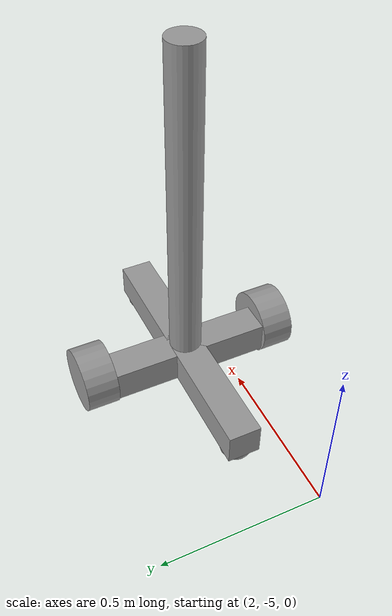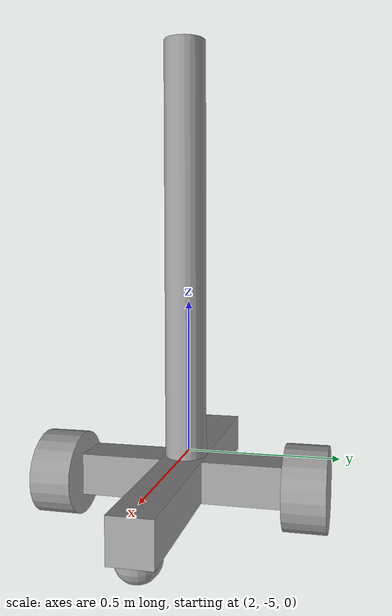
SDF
<?xml version='1.0'?>
<sdf version='1.6'>
  <model name='EimerRobot'>
    <link name='link_0_clone'>
      <pose frame=''>2.5834 -4.84657 0.119047 0 -0 0</pose>
      <inertial>
        <mass>1</mass>
        <inertia>
          <ixx>0.166667</ixx>
          <ixy>0</ixy>
          <ixz>0</ixz>
          <iyy>0.166667</iyy>
          <iyz>0</iyz>
          <izz>0.166667</izz>
        </inertia>
        <pose frame=''>0 0 0 0 -0 0</pose>
      </inertial>
      <self_collide>0</self_collide>
      <kinematic>0</kinematic>
      <gravity>1</gravity>
      <visual name='visual'>
        <pose frame=''>0 0 0 0 -0 0</pose>
        <geometry>
          <box>
            <size>0.1 0.5 0.1</size>
          </box>
        </geometry>
        <material>
          <lighting>1</lighting>
          <script>
            <uri>file://media/materials/scripts/gazebo.material</uri>
            <name>Gazebo/Grey</name>
          </script>
          <shader type='pixel'>
            <normal_map>__default__</normal_map>
          </shader>
          <ambient>0.3 0.3 0.3 1</ambient>
          <diffuse>0.7 0.7 0.7 1</diffuse>
          <specular>0.01 0.01 0.01 1</specular>
          <emissive>0 0 0 1</emissive>
        </material>
        <transparency>0</transparency>
        <cast_shadows>1</cast_shadows>
      </visual>
      <collision name='collision'>
        <laser_retro>0</laser_retro>
        <max_contacts>10</max_contacts>
        <pose frame=''>0 0 0 0 -0 0</pose>
        <geometry>
          <box>
            <size>0.1 0.5 0.1</size>
          </box>
        </geometry>
        <surface>
          <friction>
            <ode>
              <mu>1</mu>
              <mu2>1</mu2>
              <fdir1>0 0 0</fdir1>
              <slip1>0</slip1>
              <slip2>0</slip2>
            </ode>
            <torsional>
              <coefficient>1</coefficient>
              <patch_radius>0</patch_radius>
              <surface_radius>0</surface_radius>
              <use_patch_radius>1</use_patch_radius>
              <ode>
                <slip>0</slip>
              </ode>
            </torsional>
          </friction>
          <bounce>
            <restitution_coefficient>0</restitution_coefficient>
            <threshold>1e+06</threshold>
          </bounce>
          <contact>
            <collide_without_contact>0</collide_without_contact>
            <collide_without_contact_bitmask>1</collide_without_contact_bitmask>
            <collide_bitmask>1</collide_bitmask>
            <ode>
              <soft_cfm>0</soft_cfm>
              <soft_erp>0.2</soft_erp>
              <kp>1e+13</kp>
              <kd>1</kd>
              <max_vel>0.01</max_vel>
              <min_depth>0</min_depth>
            </ode>
            <bullet>
              <split_impulse>1</split_impulse>
              <split_impulse_penetration_threshold>-0.01</split_impulse_penetration_threshold>
              <soft_cfm>0</soft_cfm>
              <soft_erp>0.2</soft_erp>
              <kp>1e+13</kp>
              <kd>1</kd>
            </bullet>
          </contact>
        </surface>
      </collision>
    </link>
    <link name='link_0_clone_clone'>
      <pose frame=''>2.58152 -4.846 0.119047 0 -0 1.5707</pose>
      <inertial>
        <mass>1</mass>
        <inertia>
          <ixx>0.166667</ixx>
          <ixy>0</ixy>
          <ixz>0</ixz>
          <iyy>0.166667</iyy>
          <iyz>0</iyz>
          <izz>0.166667</izz>
        </inertia>
        <pose frame=''>0 0 0 0 -0 0</pose>
      </inertial>
      <self_collide>0</self_collide>
      <kinematic>0</kinematic>
      <visual name='visual'>
        <pose frame=''>0 0 0 0 -0 0</pose>
        <geometry>
          <box>
            <size>0.1 0.8 0.1</size>
          </box>
        </geometry>
        <material>
          <lighting>1</lighting>
          <script>
            <uri>file://media/materials/scripts/gazebo.material</uri>
            <name>Gazebo/Grey</name>
          </script>
          <shader type='pixel'>
            <normal_map>__default__</normal_map>
          </shader>
          <ambient>0.3 0.3 0.3 1</ambient>
          <diffuse>0.7 0.7 0.7 1</diffuse>
          <specular>0.01 0.01 0.01 1</specular>
          <emissive>0 0 0 1</emissive>
        </material>
        <transparency>0</transparency>
        <cast_shadows>1</cast_shadows>
      </visual>
      <collision name='collision'>
        <laser_retro>0</laser_retro>
        <max_contacts>10</max_contacts>
        <pose frame=''>0 0 0 0 -0 0</pose>
        <geometry>
          <box>
            <size>0.1 0.8 0.1</size>
          </box>
        </geometry>
        <surface>
          <friction>
            <ode>
              <mu>1</mu>
              <mu2>1</mu2>
              <fdir1>0 0 0</fdir1>
              <slip1>0</slip1>
              <slip2>0</slip2>
            </ode>
            <torsional>
              <coefficient>1</coefficient>
              <patch_radius>0</patch_radius>
              <surface_radius>0</surface_radius>
              <use_patch_radius>1</use_patch_radius>
              <ode>
                <slip>0</slip>
              </ode>
            </torsional>
          </friction>
          <bounce>
            <restitution_coefficient>0</restitution_coefficient>
            <threshold>1e+06</threshold>
          </bounce>
          <contact>
            <collide_without_contact>0</collide_without_contact>
            <collide_without_contact_bitmask>1</collide_without_contact_bitmask>
            <collide_bitmask>1</collide_bitmask>
            <ode>
              <soft_cfm>0</soft_cfm>
              <soft_erp>0.2</soft_erp>
              <kp>1e+13</kp>
              <kd>1</kd>
              <max_vel>0.01</max_vel>
              <min_depth>0</min_depth>
            </ode>
            <bullet>
              <split_impulse>1</split_impulse>
              <split_impulse_penetration_threshold>-0.01</split_impulse_penetration_threshold>
              <soft_cfm>0</soft_cfm>
              <soft_erp>0.2</soft_erp>
              <kp>1e+13</kp>
              <kd>1</kd>
            </bullet>
          </contact>
        </surface>
      </collision>
    </link>
    <link name='link_1_clone'>
      <pose frame=''>2.61519 -4.54652 0.119046 1.5707 -0 0</pose>
      <inertial>
        <mass>1</mass>
        <inertia>
          <ixx>0.145833</ixx>
          <ixy>0</ixy>
          <ixz>0</ixz>
          <iyy>0.145833</iyy>
          <iyz>0</iyz>
          <izz>0.125</izz>
        </inertia>
        <pose frame=''>0 0 0 0 -0 0</pose>
      </inertial>
      <self_collide>0</self_collide>
      <kinematic>0</kinematic>
      <visual name='visual'>
        <pose frame=''>0 0 0 0 -0 0</pose>
        <geometry>
          <cylinder>
            <radius>0.1</radius>
            <length>0.1</length>
          </cylinder>
        </geometry>
        <material>
          <lighting>1</lighting>
          <script>
            <uri>file://media/materials/scripts/gazebo.material</uri>
            <name>Gazebo/Grey</name>
          </script>
          <shader type='pixel'>
            <normal_map>__default__</normal_map>
          </shader>
          <ambient>0.3 0.3 0.3 1</ambient>
          <diffuse>0.7 0.7 0.7 1</diffuse>
          <specular>0.01 0.01 0.01 1</specular>
          <emissive>0 0 0 1</emissive>
        </material>
        <transparency>0</transparency>
        <cast_shadows>1</cast_shadows>
      </visual>
      <collision name='collision'>
        <laser_retro>0</laser_retro>
        <max_contacts>10</max_contacts>
        <pose frame=''>0 0 0 0 -0 0</pose>
        <geometry>
          <cylinder>
            <radius>0.1</radius>
            <length>0.1</length>
          </cylinder>
        </geometry>
        <surface>
          <friction>
            <ode>
              <mu>1</mu>
              <mu2>1</mu2>
              <fdir1>0 0 0</fdir1>
              <slip1>0</slip1>
              <slip2>0</slip2>
            </ode>
            <torsional>
              <coefficient>1</coefficient>
              <patch_radius>0</patch_radius>
              <surface_radius>0</surface_radius>
              <use_patch_radius>1</use_patch_radius>
              <ode>
                <slip>0</slip>
              </ode>
            </torsional>
          </friction>
          <bounce>
            <restitution_coefficient>0</restitution_coefficient>
            <threshold>1e+06</threshold>
          </bounce>
          <contact>
            <collide_without_contact>0</collide_without_contact>
            <collide_without_contact_bitmask>1</collide_without_contact_bitmask>
            <collide_bitmask>1</collide_bitmask>
            <ode>
              <soft_cfm>0</soft_cfm>
              <soft_erp>0.2</soft_erp>
              <kp>1e+13</kp>
              <kd>1</kd>
              <max_vel>0.01</max_vel>
              <min_depth>0</min_depth>
            </ode>
            <bullet>
              <split_impulse>1</split_impulse>
              <split_impulse_penetration_threshold>-0.01</split_impulse_penetration_threshold>
              <soft_cfm>0</soft_cfm>
              <soft_erp>0.2</soft_erp>
              <kp>1e+13</kp>
              <kd>1</kd>
            </bullet>
          </contact>
        </surface>
      </collision>
    </link>
    <link name='link_1_clone_clone'>
      <pose frame=''>2.61534 -5.14663 0.119047 1.5707 -0 0</pose>
      <inertial>
        <mass>1</mass>
        <inertia>
          <ixx>0.145833</ixx>
          <ixy>0</ixy>
          <ixz>0</ixz>
          <iyy>0.145833</iyy>
          <iyz>0</iyz>
          <izz>0.125</izz>
        </inertia>
        <pose frame=''>0 0 0 0 -0 0</pose>
      </inertial>
      <self_collide>0</self_collide>
      <kinematic>0</kinematic>
      <visual name='visual'>
        <pose frame=''>0 0 0 0 -0 0</pose>
        <geometry>
          <cylinder>
            <radius>0.1</radius>
            <length>0.1</length>
          </cylinder>
        </geometry>
        <material>
          <lighting>1</lighting>
          <script>
            <uri>file://media/materials/scripts/gazebo.material</uri>
            <name>Gazebo/Grey</name>
          </script>
          <shader type='pixel'>
            <normal_map>__default__</normal_map>
          </shader>
          <ambient>0.3 0.3 0.3 1</ambient>
          <diffuse>0.7 0.7 0.7 1</diffuse>
          <specular>0.01 0.01 0.01 1</specular>
          <emissive>0 0 0 1</emissive>
        </material>
        <transparency>0</transparency>
        <cast_shadows>1</cast_shadows>
      </visual>
      <collision name='collision'>
        <laser_retro>0</laser_retro>
        <max_contacts>10</max_contacts>
        <pose frame=''>0 0 0 0 -0 0</pose>
        <geometry>
          <cylinder>
            <radius>0.1</radius>
            <length>0.1</length>
          </cylinder>
        </geometry>
        <surface>
          <friction>
            <ode>
              <mu>1</mu>
              <mu2>1</mu2>
              <fdir1>0 0 0</fdir1>
              <slip1>0</slip1>
              <slip2>0</slip2>
            </ode>
            <torsional>
              <coefficient>1</coefficient>
              <patch_radius>0</patch_radius>
              <surface_radius>0</surface_radius>
              <use_patch_radius>1</use_patch_radius>
              <ode>
                <slip>0</slip>
              </ode>
            </torsional>
          </friction>
          <bounce>
            <restitution_coefficient>0</restitution_coefficient>
            <threshold>1e+06</threshold>
          </bounce>
          <contact>
            <collide_without_contact>0</collide_without_contact>
            <collide_without_contact_bitmask>1</collide_without_contact_bitmask>
            <collide_bitmask>1</collide_bitmask>
            <ode>
              <soft_cfm>0</soft_cfm>
              <soft_erp>0.2</soft_erp>
              <kp>1e+13</kp>
              <kd>1</kd>
              <max_vel>0.01</max_vel>
              <min_depth>0</min_depth>
            </ode>
            <bullet>
              <split_impulse>1</split_impulse>
              <split_impulse_penetration_threshold>-0.01</split_impulse_penetration_threshold>
              <soft_cfm>0</soft_cfm>
              <soft_erp>0.2</soft_erp>
              <kp>1e+13</kp>
              <kd>1</kd>
            </bullet>
          </contact>
        </surface>
      </collision>
    </link>
    <link name='link_3_clone'>
      <pose frame=''>2.93153 -4.846 0.069047 0 -0 0</pose>
      <inertial>
        <mass>1</mass>
        <inertia>
          <ixx>0.1</ixx>
          <ixy>0</ixy>
          <ixz>0</ixz>
          <iyy>0.1</iyy>
          <iyz>0</iyz>
          <izz>0.1</izz>
        </inertia>
        <pose frame=''>0 0 0 0 -0 0</pose>
      </inertial>
      <self_collide>0</self_collide>
      <kinematic>0</kinematic>
      <visual name='visual'>
        <pose frame=''>0 0 0 0 -0 0</pose>
        <geometry>
          <sphere>
            <radius>0.05</radius>
          </sphere>
        </geometry>
        <material>
          <lighting>1</lighting>
          <script>
            <uri>file://media/materials/scripts/gazebo.material</uri>
            <name>Gazebo/Grey</name>
          </script>
          <shader type='pixel'>
            <normal_map>__default__</normal_map>
          </shader>
          <ambient>0.3 0.3 0.3 1</ambient>
          <diffuse>0.7 0.7 0.7 1</diffuse>
          <specular>0.01 0.01 0.01 1</specular>
          <emissive>0 0 0 1</emissive>
        </material>
        <transparency>0</transparency>
        <cast_shadows>1</cast_shadows>
      </visual>
      <collision name='collision'>
        <laser_retro>0</laser_retro>
        <max_contacts>10</max_contacts>
        <pose frame=''>0 0 0 0 -0 0</pose>
        <geometry>
          <sphere>
            <radius>0.05</radius>
          </sphere>
        </geometry>
        <surface>
          <friction>
            <ode>
              <mu>1</mu>
              <mu2>1</mu2>
              <fdir1>0 0 0</fdir1>
              <slip1>0</slip1>
              <slip2>0</slip2>
            </ode>
            <torsional>
              <coefficient>1</coefficient>
              <patch_radius>0</patch_radius>
              <surface_radius>0</surface_radius>
              <use_patch_radius>1</use_patch_radius>
              <ode>
                <slip>0</slip>
              </ode>
            </torsional>
          </friction>
          <bounce>
            <restitution_coefficient>0</restitution_coefficient>
            <threshold>1e+06</threshold>
          </bounce>
          <contact>
            <collide_without_contact>0</collide_without_contact>
            <collide_without_contact_bitmask>1</collide_without_contact_bitmask>
            <collide_bitmask>1</collide_bitmask>
            <ode>
              <soft_cfm>0</soft_cfm>
              <soft_erp>0.2</soft_erp>
              <kp>1e+13</kp>
              <kd>1</kd>
              <max_vel>0.01</max_vel>
              <min_depth>0</min_depth>
            </ode>
            <bullet>
              <split_impulse>1</split_impulse>
              <split_impulse_penetration_threshold>-0.01</split_impulse_penetration_threshold>
              <soft_cfm>0</soft_cfm>
              <soft_erp>0.2</soft_erp>
              <kp>1e+13</kp>
              <kd>1</kd>
            </bullet>
          </contact>
        </surface>
      </collision>
    </link>
    <link name='link_3_clone_clone'>
      <pose frame=''>2.23152 -4.846 0.069047 0 -0 0</pose>
      <inertial>
        <mass>1</mass>
        <inertia>
          <ixx>0.1</ixx>
          <ixy>0</ixy>
          <ixz>0</ixz>
          <iyy>0.1</iyy>
          <iyz>0</iyz>
          <izz>0.1</izz>
        </inertia>
        <pose frame=''>0 0 0 0 -0 0</pose>
      </inertial>
      <self_collide>0</self_collide>
      <kinematic>0</kinematic>
      <visual name='visual'>
        <pose frame=''>0 0 0 0 -0 0</pose>
        <geometry>
          <sphere>
            <radius>0.05</radius>
          </sphere>
        </geometry>
        <material>
          <lighting>1</lighting>
          <script>
            <uri>file://media/materials/scripts/gazebo.material</uri>
            <name>Gazebo/Grey</name>
          </script>
          <shader type='pixel'>
            <normal_map>__default__</normal_map>
          </shader>
          <ambient>0.3 0.3 0.3 1</ambient>
          <diffuse>0.7 0.7 0.7 1</diffuse>
          <specular>0.01 0.01 0.01 1</specular>
          <emissive>0 0 0 1</emissive>
        </material>
        <transparency>0</transparency>
        <cast_shadows>1</cast_shadows>
      </visual>
      <collision name='collision'>
        <laser_retro>0</laser_retro>
        <max_contacts>10</max_contacts>
        <pose frame=''>0 0 0 0 -0 0</pose>
        <geometry>
          <sphere>
            <radius>0.05</radius>
          </sphere>
        </geometry>
        <surface>
          <friction>
            <ode>
              <mu>1</mu>
              <mu2>1</mu2>
              <fdir1>0 0 0</fdir1>
              <slip1>0</slip1>
              <slip2>0</slip2>
            </ode>
            <torsional>
              <coefficient>1</coefficient>
              <patch_radius>0</patch_radius>
              <surface_radius>0</surface_radius>
              <use_patch_radius>1</use_patch_radius>
              <ode>
                <slip>0</slip>
              </ode>
            </torsional>
          </friction>
          <bounce>
            <restitution_coefficient>0</restitution_coefficient>
            <threshold>1e+06</threshold>
          </bounce>
          <contact>
            <collide_without_contact>0</collide_without_contact>
            <collide_without_contact_bitmask>1</collide_without_contact_bitmask>
            <collide_bitmask>1</collide_bitmask>
            <ode>
              <soft_cfm>0</soft_cfm>
              <soft_erp>0.2</soft_erp>
              <kp>1e+13</kp>
              <kd>1</kd>
              <max_vel>0.01</max_vel>
              <min_depth>0</min_depth>
            </ode>
            <bullet>
              <split_impulse>1</split_impulse>
              <split_impulse_penetration_threshold>-0.01</split_impulse_penetration_threshold>
              <soft_cfm>0</soft_cfm>
              <soft_erp>0.2</soft_erp>
              <kp>1e+13</kp>
              <kd>1</kd>
            </bullet>
          </contact>
        </surface>
      </collision>
    </link>
    <link name='link_4'>
      <pose frame=''>2.5834 -4.84657 0.669047 0 -0 0</pose>
      <inertial>
        <mass>1</mass>
        <inertia>
          <ixx>0.145833</ixx>
          <ixy>0</ixy>
          <ixz>0</ixz>
          <iyy>0.145833</iyy>
          <iyz>0</iyz>
          <izz>0.125</izz>
        </inertia>
        <pose frame=''>0 0 0 0 -0 0</pose>
      </inertial>
      <self_collide>0</self_collide>
      <kinematic>0</kinematic>
      <visual name='visual'>
        <pose frame=''>0 0 0 0 -0 0</pose>
        <geometry>
          <cylinder>
            <radius>0.05</radius>
            <length>1</length>
          </cylinder>
        </geometry>
        <material>
          <lighting>1</lighting>
          <script>
            <uri>file://media/materials/scripts/gazebo.material</uri>
            <name>Gazebo/Grey</name>
          </script>
          <shader type='pixel'>
            <normal_map>__default__</normal_map>
          </shader>
          <ambient>0.3 0.3 0.3 1</ambient>
          <diffuse>0.7 0.7 0.7 1</diffuse>
          <specular>0.01 0.01 0.01 1</specular>
          <emissive>0 0 0 1</emissive>
        </material>
        <transparency>0</transparency>
        <cast_shadows>1</cast_shadows>
      </visual>
      <collision name='collision'>
        <laser_retro>0</laser_retro>
        <max_contacts>10</max_contacts>
        <pose frame=''>0 0 0 0 -0 0</pose>
        <geometry>
          <cylinder>
            <radius>0.05</radius>
            <length>1</length>
          </cylinder>
        </geometry>
        <surface>
          <friction>
            <ode>
              <mu>1</mu>
              <mu2>1</mu2>
              <fdir1>0 0 0</fdir1>
              <slip1>0</slip1>
              <slip2>0</slip2>
            </ode>
            <torsional>
              <coefficient>1</coefficient>
              <patch_radius>0</patch_radius>
              <surface_radius>0</surface_radius>
              <use_patch_radius>1</use_patch_radius>
              <ode>
                <slip>0</slip>
              </ode>
            </torsional>
          </friction>
          <bounce>
            <restitution_coefficient>0</restitution_coefficient>
            <threshold>1e+06</threshold>
          </bounce>
          <contact>
            <collide_without_contact>0</collide_without_contact>
            <collide_without_contact_bitmask>1</collide_without_contact_bitmask>
            <collide_bitmask>1</collide_bitmask>
            <ode>
              <soft_cfm>0</soft_cfm>
              <soft_erp>0.2</soft_erp>
              <kp>1e+13</kp>
              <kd>1</kd>
              <max_vel>0.01</max_vel>
              <min_depth>0</min_depth>
            </ode>
            <bullet>
              <split_impulse>1</split_impulse>
              <split_impulse_penetration_threshold>-0.01</split_impulse_penetration_threshold>
              <soft_cfm>0</soft_cfm>
              <soft_erp>0.2</soft_erp>
              <kp>1e+13</kp>
              <kd>1</kd>
            </bullet>
          </contact>
        </surface>
      </collision>
    </link>
    <joint name='link_0_clone_JOINT_0' type='fixed'>
      <parent>link_0_clone</parent>
      <child>link_0_clone_clone</child>
      <pose frame=''>0 0 0 0 -0 0</pose>
      <physics>
        <ode>
          <limit>
            <cfm>0</cfm>
            <erp>0.2</erp>
          </limit>
          <suspension>
            <cfm>0</cfm>
            <erp>0.2</erp>
          </suspension>
        </ode>
      </physics>
    </joint>
    <joint name='link_0_clone_JOINT_1' type='revolute'>
      <parent>link_0_clone</parent>
      <child>link_1_clone</child>
      <pose frame=''>0 0 0 0 -0 0</pose>
      <axis>
        <xyz>0 0 1</xyz>
        <use_parent_model_frame>0</use_parent_model_frame>
        <limit>
          <lower>-1.79769e+308</lower>
          <upper>1.79769e+308</upper>
          <effort>-1</effort>
          <velocity>-1</velocity>
        </limit>
        <dynamics>
          <spring_reference>0</spring_reference>
          <spring_stiffness>0</spring_stiffness>
          <damping>0</damping>
        </dynamics>
      </axis>
      <physics>
        <ode>
          <limit>
            <cfm>0</cfm>
            <erp>0.2</erp>
          </limit>
          <suspension>
            <cfm>0</cfm>
            <erp>0.2</erp>
          </suspension>
        </ode>
      </physics>
    </joint>
    <joint name='link_0_clone_JOINT_2' type='revolute'>
      <parent>link_0_clone</parent>
      <child>link_1_clone_clone</child>
      <pose frame=''>0 0 0 0 -0 0</pose>
      <axis>
        <xyz>0 0 1</xyz>
        <use_parent_model_frame>0</use_parent_model_frame>
        <limit>
          <lower>-1.79769e+308</lower>
          <upper>1.79769e+308</upper>
          <effort>-1</effort>
          <velocity>-1</velocity>
        </limit>
        <dynamics>
          <spring_reference>0</spring_reference>
          <spring_stiffness>0</spring_stiffness>
          <damping>0</damping>
        </dynamics>
      </axis>
      <physics>
        <ode>
          <limit>
            <cfm>0</cfm>
            <erp>0.2</erp>
          </limit>
          <suspension>
            <cfm>0</cfm>
            <erp>0.2</erp>
          </suspension>
        </ode>
      </physics>
    </joint>
    <joint name='link_0_clone_JOINT_8' type='fixed'>
      <parent>link_0_clone</parent>
      <child>link_4</child>
      <pose frame=''>0 0 0 0 -0 0</pose>
      <physics>
        <ode>
          <limit>
            <cfm>0</cfm>
            <erp>0.2</erp>
          </limit>
          <suspension>
            <cfm>0</cfm>
            <erp>0.2</erp>
          </suspension>
        </ode>
      </physics>
    </joint>
    <joint name='link_0_clone_clone_JOINT_5' type='ball'>
      <parent>link_0_clone_clone</parent>
      <child>link_3_clone</child>
      <pose frame=''>0 0 0 0 -0 0</pose>
      <physics>
        <ode>
          <limit>
            <cfm>0</cfm>
            <erp>0.2</erp>
          </limit>
          <suspension>
            <cfm>0</cfm>
            <erp>0.2</erp>
          </suspension>
        </ode>
      </physics>
    </joint>
    <joint name='link_0_clone_clone_JOINT_6' type='ball'>
      <parent>link_0_clone_clone</parent>
      <child>link_3_clone_clone</child>
      <pose frame=''>0 0 0 0 -0 0</pose>
      <physics>
        <ode>
          <limit>
            <cfm>0</cfm>
            <erp>0.2</erp>
          </limit>
          <suspension>
            <cfm>0</cfm>
            <erp>0.2</erp>
          </suspension>
        </ode>
      </physics>
    </joint>
    <static>0</static>
    <allow_auto_disable>1</allow_auto_disable>
  </model>
</sdf>
